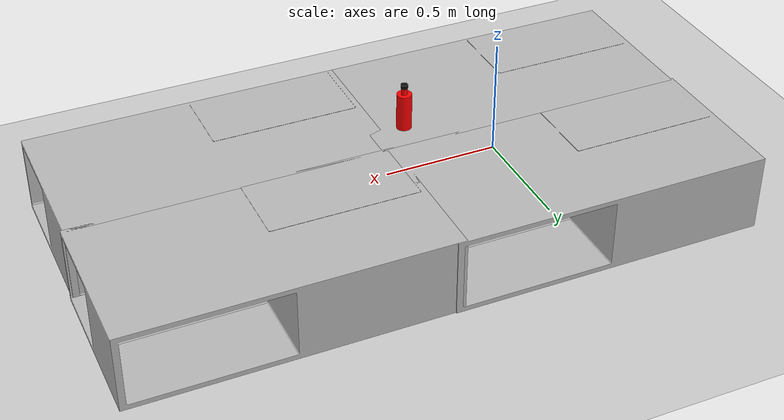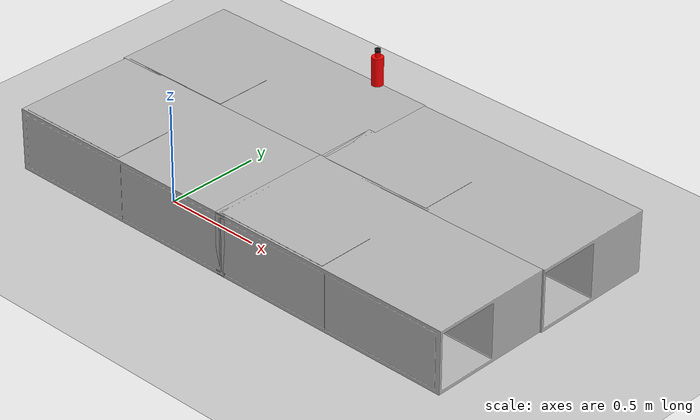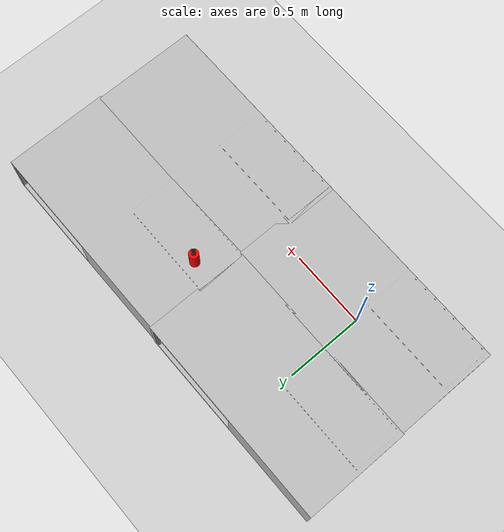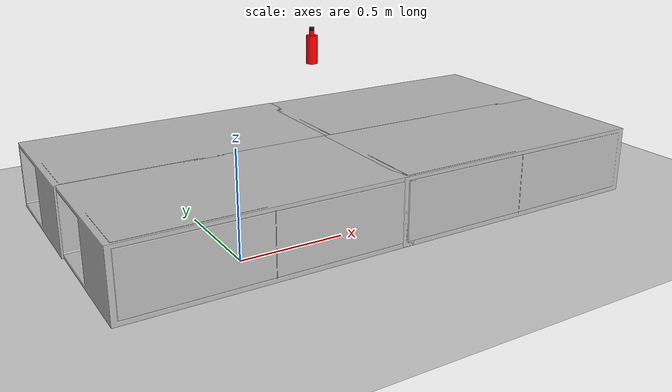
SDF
<sdf version="1.9">
 <world name="empty_world">
  <gravity>0 0 -9.8</gravity>
  <magnetic_field>6e-06 2.3e-05 -4.2e-05</magnetic_field>
  <atmosphere type="adiabatic"/>
  <physics type="ode">
   <max_step_size>0.001</max_step_size>
   <real_time_factor>1</real_time_factor>
   <real_time_update_rate>1000</real_time_update_rate>
  </physics>
  <scene><ambient>0.4 0.4 0.4 1</ambient><background>0.7 0.7 0.7 1</background><shadows>true</shadows></scene>
  <model name="bottle">
   <pose>0.70 0.60 0.74 0 0 0</pose>
   <static>false</static>
   <link name="bottle_link">
    <inertial>
     <mass>0.25</mass>
     <inertia>
      <ixx>0.000724</ixx>
      <ixy>0.0</ixy>
      <ixz>0.0</ixz>
      <iyy>0.000724</iyy>
      <iyz>0.0</iyz>
      <izz>0.000098</izz>
     </inertia>
    </inertial>
    <collision name="bottle_collision">
     <geometry><cylinder><radius>0.028</radius><length>0.18</length></cylinder></geometry>
     <surface><friction><ode><mu>1.0</mu><mu2>1.0</mu2></ode></friction></surface>
    </collision>
    <visual name="bottle_body_visual">
     <pose>0 0 -0.02 0 0 0</pose>
     <geometry><cylinder><radius>0.028</radius><length>0.14</length></cylinder></geometry>
     <material>
      <ambient>0.8 0.0 0.0 1</ambient>
      <diffuse>1.0 0.0 0.0 1</diffuse>
      <specular>0.2 0.2 0.2 1</specular>
     </material>
    </visual>
    <visual name="bottle_neck_visual">
     <pose>0 0 0.0625 0 0 0</pose>
     <geometry><cylinder><radius>0.012</radius><length>0.025</length></cylinder></geometry>
     <material>
      <ambient>0.8 0.0 0.0 1</ambient>
      <diffuse>1.0 0.0 0.0 1</diffuse>
      <specular>0.2 0.2 0.2 1</specular>
     </material>
    </visual>
    <visual name="bottle_cap_visual">
     <pose>0 0 0.0825 0 0 0</pose>
     <geometry><cylinder><radius>0.013</radius><length>0.015</length></cylinder></geometry>
     <material>
      <ambient>0.02 0.02 0.02 1</ambient>
      <diffuse>0.05 0.05 0.05 1</diffuse>
      <specular>0.3 0.3 0.3 1</specular>
     </material>
    </visual>
   </link>
  </model>
  <model name="CoffeeTable_1">
   <static>true</static>
   <model name="aws_robomaker_residential_CoffeeTable_01">
    <link name="link">
     <inertial>
      <mass>21.699999999999999</mass>
      <inertia>
       <ixx>0.81374999999999975</ixx>
       <ixy>0</ixy>
       <ixz>0</ixz>
       <iyy>2.76675</iyy>
       <iyz>0</iyz>
       <izz>3.254</izz>
      </inertia>
     </inertial>
     <collision name="collision">
      <geometry>
       <mesh>
        <uri>model://aws_robomaker_residential_CoffeeTable_01/meshes/aws_CoffeeTable_01_collision.DAE</uri>
        <scale>1 1 1</scale>
       </mesh>
      </geometry>
      <surface><contact><ode><max_vel>0.01</max_vel></ode></contact></surface>
     </collision>
     <visual name="visual">
      <geometry>
       <mesh><uri>model://aws_robomaker_residential_CoffeeTable_01/meshes/aws_CoffeeTable_01_visual.DAE</uri></mesh>
      </geometry>
      <meta><layer>1</layer></meta>
     </visual>
    </link>
    <static>true</static>
   </model>
   <pose>0 0 0.041983 0 -0 0</pose>
  </model>
  <model name="CoffeeTable_2">
   <static>true</static>
   <model name="aws_robomaker_residential_CoffeeTable_01">
    <link name="link">
     <inertial>
      <mass>21.699999999999999</mass>
      <inertia>
       <ixx>0.81374999999999975</ixx>
       <ixy>0</ixy>
       <ixz>0</ixz>
       <iyy>2.76675</iyy>
       <iyz>0</iyz>
       <izz>3.254</izz>
      </inertia>
     </inertial>
     <collision name="collision">
      <geometry>
       <mesh>
        <uri>model://aws_robomaker_residential_CoffeeTable_01/meshes/aws_CoffeeTable_01_collision.DAE</uri>
        <scale>1 1 1</scale>
       </mesh>
      </geometry>
      <surface><contact><ode><max_vel>0.01</max_vel></ode></contact></surface>
     </collision>
     <visual name="visual">
      <geometry>
       <mesh><uri>model://aws_robomaker_residential_CoffeeTable_01/meshes/aws_CoffeeTable_01_visual.DAE</uri></mesh>
      </geometry>
      <meta><layer>1</layer></meta>
     </visual>
    </link>
    <static>true</static>
   </model>
   <pose>1.2577 0 0.041983 0 -0 0</pose>
  </model>
  <model name="CoffeeTable_3">
   <static>true</static>
   <model name="aws_robomaker_residential_CoffeeTable_01">
    <link name="link">
     <inertial>
      <mass>21.699999999999999</mass>
      <inertia>
       <ixx>0.81374999999999975</ixx>
       <ixy>0</ixy>
       <ixz>0</ixz>
       <iyy>2.76675</iyy>
       <iyz>0</iyz>
       <izz>3.254</izz>
      </inertia>
     </inertial>
     <collision name="collision">
      <geometry>
       <mesh>
        <uri>model://aws_robomaker_residential_CoffeeTable_01/meshes/aws_CoffeeTable_01_collision.DAE</uri>
        <scale>1 1 1</scale>
       </mesh>
      </geometry>
      <surface><contact><ode><max_vel>0.01</max_vel></ode></contact></surface>
     </collision>
     <visual name="visual">
      <geometry>
       <mesh><uri>model://aws_robomaker_residential_CoffeeTable_01/meshes/aws_CoffeeTable_01_visual.DAE</uri></mesh>
      </geometry>
      <meta><layer>1</layer></meta>
     </visual>
    </link>
    <static>true</static>
   </model>
   <pose>1.26554 0.637963 0.041983 0 -0 0</pose>
  </model>
  <model name="CoffeeTable_4">
   <static>true</static>
   <model name="aws_robomaker_residential_CoffeeTable_01">
    <link name="link">
     <inertial>
      <mass>21.699999999999999</mass>
      <inertia>
       <ixx>0.81374999999999975</ixx>
       <ixy>0</ixy>
       <ixz>0</ixz>
       <iyy>2.76675</iyy>
       <iyz>0</iyz>
       <izz>3.254</izz>
      </inertia>
     </inertial>
     <collision name="collision">
      <geometry>
       <mesh>
        <uri>model://aws_robomaker_residential_CoffeeTable_01/meshes/aws_CoffeeTable_01_collision.DAE</uri>
        <scale>1 1 1</scale>
       </mesh>
      </geometry>
      <surface><contact><ode><max_vel>0.01</max_vel></ode></contact></surface>
     </collision>
     <visual name="visual">
      <geometry>
       <mesh><uri>model://aws_robomaker_residential_CoffeeTable_01/meshes/aws_CoffeeTable_01_visual.DAE</uri></mesh>
      </geometry>
      <meta><layer>1</layer></meta>
     </visual>
    </link>
    <static>true</static>
   </model>
   <pose>-0.008642 0.643146 0.041983 0 -0 0</pose>
  </model>
  <model name="ground_plane">
   <static>true</static>
   <link name="link">
    <collision name="collision">
     <geometry><plane><normal>0 0 1</normal><size>1 1</size></plane></geometry>
    </collision>
    <visual name="visual">
     <geometry><plane><normal>0 0 1</normal><size>100 100</size></plane></geometry>
     <material>
      <ambient>0.8 0.8 0.8 1</ambient>
      <diffuse>0.8 0.8 0.8 1</diffuse>
      <specular>0.8 0.8 0.8 1</specular>
     </material>
    </visual>
    <inertial>
     <mass>1</mass>
     <inertia><ixx>1</ixx><ixy>0</ixy><ixz>0</ixz><iyy>1</iyy><iyz>0</iyz><izz>1</izz></inertia>
    </inertial>
   </link>
  </model>
  <light name="sun" type="directional">
   <pose>0 0 10 0 -0 0</pose>
   <intensity>1</intensity>
   <direction>-0.5 0.1 -0.9</direction>
   <diffuse>0.8 0.8 0.8 1</diffuse>
   <specular>0.2 0.2 0.2 1</specular>
   <attenuation>
    <range>1000</range>
    <linear>0.01</linear>
    <constant>0.90000000000000002</constant>
    <quadratic>0.001</quadratic>
   </attenuation>
   <spot><inner_angle>0</inner_angle><outer_angle>0</outer_angle><falloff>0</falloff></spot>
  </light>
 </world>
</sdf>
